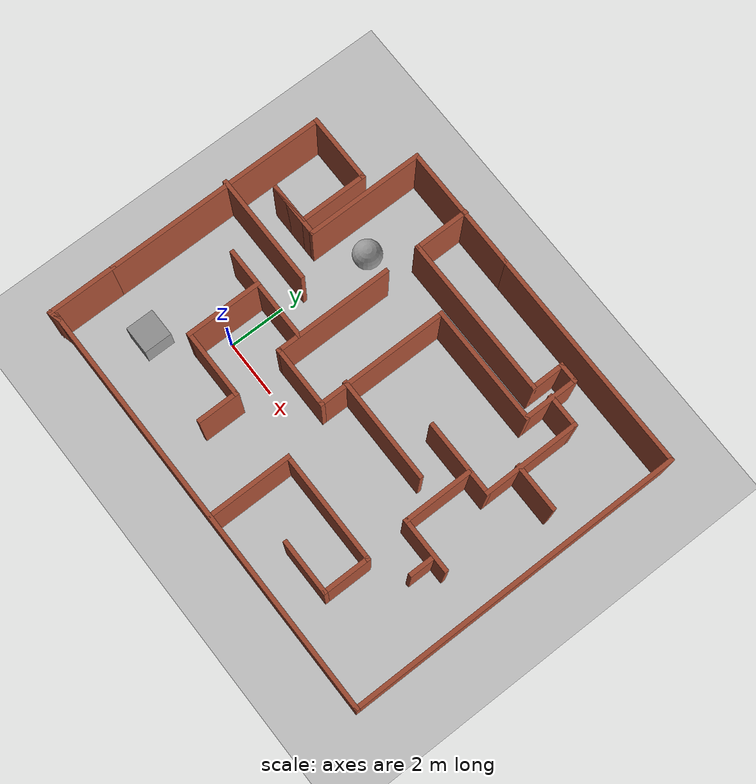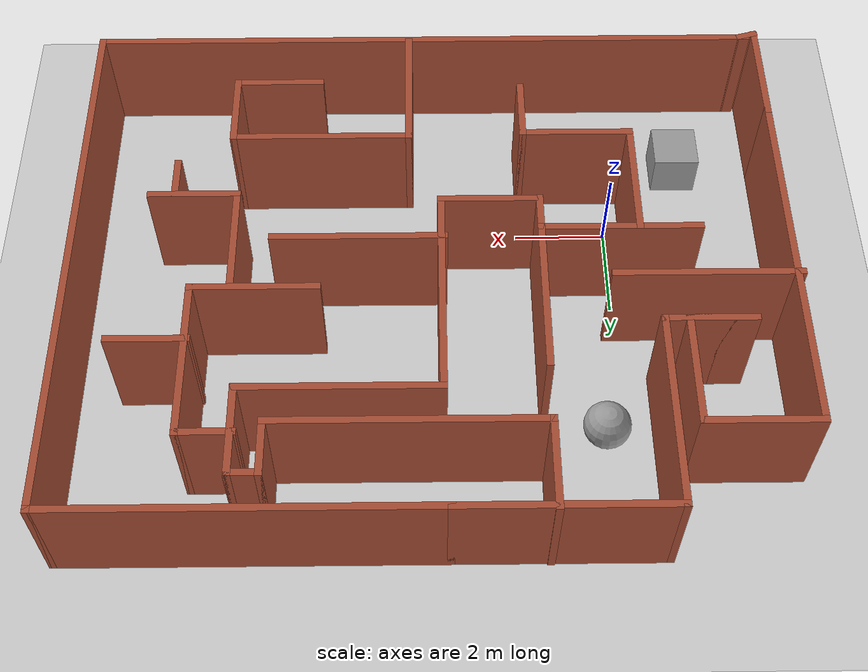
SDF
<sdf version="1.7">
 <world name="default">
  <light name="sun" type="directional">
   <pose>0 0 10 0 -0 0</pose>
   <diffuse>0.8 0.8 0.8 1</diffuse>
   <specular>0.2 0.2 0.2 1</specular>
   <attenuation>
    <range>1000</range>
    <constant>0.9</constant>
    <linear>0.01</linear>
    <quadratic>0.001</quadratic>
   </attenuation>
   <direction>-0.5 0.1 -0.9</direction>
   <spot><inner_angle>0</inner_angle><outer_angle>0</outer_angle><falloff>0</falloff></spot>
  </light>
  <model name="ground_plane">
   <static>1</static>
   <link name="link">
    <collision name="collision">
     <geometry><plane><normal>0 0 1</normal><size>100 100</size></plane></geometry>
     <surface><friction><ode><mu>100</mu><mu2>50</mu2></ode></friction></surface>
    </collision>
    <visual name="visual">
     <cast_shadows>0</cast_shadows>
     <geometry><plane><normal>0 0 1</normal><size>100 100</size></plane></geometry>
     <material>
      <script><uri>file://media/materials/scripts/gazebo.material</uri><name>Gazebo/Grey</name></script>
     </material>
    </visual>
   </link>
  </model>
  <gravity>0 0 -9.8</gravity>
  <magnetic_field>6e-06 2.3e-05 -4.2e-05</magnetic_field>
  <atmosphere type="adiabatic"/>
  <physics type="ode">
   <max_step_size>0.001</max_step_size>
   <real_time_factor>1</real_time_factor>
   <real_time_update_rate>1000</real_time_update_rate>
  </physics>
  <scene><ambient>0.4 0.4 0.4 1</ambient><background>0.7 0.7 0.7 1</background><shadows>1</shadows></scene>
  <audio><device>default</device></audio>
  <spherical_coordinates>
   <surface_model>EARTH_WGS84</surface_model>
   <latitude_deg>0</latitude_deg>
   <longitude_deg>0</longitude_deg>
   <elevation>0</elevation>
   <heading_deg>0</heading_deg>
  </spherical_coordinates>
  <model name="new_world">
   <pose>3.90558 1.97964 0 0 -0 0</pose>
   <link name="Wall_0">
    <collision name="Wall_0_Collision">
     <geometry><box><size>2.5 0.15 2.5</size></box></geometry>
     <pose>0 0 1.25 0 -0 0</pose>
    </collision>
    <visual name="Wall_0_Visual">
     <pose>0 0 1.25 0 -0 0</pose>
     <geometry><box><size>2.5 0.15 2.5</size></box></geometry>
     <material>
      <script><uri>file://media/materials/scripts/gazebo.material</uri><name>Gazebo/Bricks</name></script>
      <ambient>1 1 1 1</ambient>
     </material>
     <meta><layer>0</layer></meta>
    </visual>
    <pose>-7.47558 -4.80464 0 0 -0 -1.5708</pose>
   </link>
   <link name="Wall_10">
    <collision name="Wall_10_Collision">
     <geometry><box><size>12 0.15 2.5</size></box></geometry>
     <pose>0 0 1.25 0 -0 0</pose>
    </collision>
    <visual name="Wall_10_Visual">
     <pose>0 0 1.25 0 -0 0</pose>
     <geometry><box><size>12 0.15 2.5</size></box></geometry>
     <material>
      <script><uri>file://media/materials/scripts/gazebo.material</uri><name>Gazebo/Bricks</name></script>
      <ambient>1 1 1 1</ambient>
     </material>
     <meta><layer>0</layer></meta>
    </visual>
    <pose>7.57442 0.045359 0 0 -0 -1.5708</pose>
   </link>
   <link name="Wall_11">
    <collision name="Wall_11_Collision">
     <geometry><box><size>15 0.15 2.5</size></box></geometry>
     <pose>0 0 1.25 0 -0 0</pose>
    </collision>
    <visual name="Wall_11_Visual">
     <pose>0 0 1.25 0 -0 0</pose>
     <geometry><box><size>15 0.15 2.5</size></box></geometry>
     <material>
      <script><uri>file://media/materials/scripts/gazebo.material</uri><name>Gazebo/Bricks</name></script>
      <ambient>1 1 1 1</ambient>
     </material>
     <meta><layer>0</layer></meta>
    </visual>
    <pose>0.149421 -5.87964 0 0 -0 3.14159</pose>
   </link>
   <link name="Wall_14">
    <collision name="Wall_14_Collision">
     <geometry><box><size>0.5 0.15 2.5</size></box></geometry>
     <pose>0 0 1.25 0 -0 0</pose>
    </collision>
    <visual name="Wall_14_Visual">
     <pose>0 0 1.25 0 -0 0</pose>
     <geometry><box><size>0.5 0.15 2.5</size></box></geometry>
     <material>
      <script><uri>file://media/materials/scripts/gazebo.material</uri><name>Gazebo/Bricks</name></script>
      <ambient>1 1 1 1</ambient>
     </material>
     <meta><layer>0</layer></meta>
    </visual>
    <pose>-7.30654 -5.93435 0 0 -0 0.261799</pose>
   </link>
   <link name="Wall_16">
    <collision name="Wall_16_Collision">
     <geometry><box><size>2 0.15 2.5</size></box></geometry>
     <pose>0 0 1.25 0 -0 0</pose>
    </collision>
    <visual name="Wall_16_Visual">
     <pose>0 0 1.25 0 -0 0</pose>
     <geometry><box><size>2 0.15 2.5</size></box></geometry>
     <material>
      <script><uri>file://media/materials/scripts/gazebo.material</uri><name>Gazebo/Bricks</name></script>
      <ambient>1 1 1 1</ambient>
     </material>
     <meta><layer>0</layer></meta>
    </visual>
    <pose>-2.26243 5.0715 0 0 -0 -1.5708</pose>
   </link>
   <link name="Wall_17">
    <collision name="Wall_17_Collision">
     <geometry><box><size>5.75 0.15 2.5</size></box></geometry>
     <pose>0 0 1.25 0 -0 0</pose>
    </collision>
    <visual name="Wall_17_Visual">
     <pose>0 0 1.25 0 -0 0</pose>
     <geometry><box><size>5.75 0.15 2.5</size></box></geometry>
     <material>
      <script><uri>file://media/materials/scripts/gazebo.material</uri><name>Gazebo/Bricks</name></script>
      <ambient>1 1 1 1</ambient>
     </material>
     <meta><layer>0</layer></meta>
    </visual>
    <pose>0.537572 4.1465 0 0 -0 0</pose>
   </link>
   <link name="Wall_18">
    <collision name="Wall_18_Collision">
     <geometry><box><size>1.25 0.15 2.5</size></box></geometry>
     <pose>0 0 1.25 0 -0 0</pose>
    </collision>
    <visual name="Wall_18_Visual">
     <pose>0 0 1.25 0 -0 0</pose>
     <geometry><box><size>1.25 0.15 2.5</size></box></geometry>
     <material>
      <script><uri>file://media/materials/scripts/gazebo.material</uri><name>Gazebo/Bricks</name></script>
      <ambient>1 1 1 1</ambient>
     </material>
     <meta><layer>0</layer></meta>
    </visual>
    <pose>3.33757 4.6965 0 0 -0 1.5708</pose>
   </link>
   <link name="Wall_19">
    <collision name="Wall_19_Collision">
     <geometry><box><size>0.75 0.15 2.5</size></box></geometry>
     <pose>0 0 1.25 0 -0 0</pose>
    </collision>
    <visual name="Wall_19_Visual">
     <pose>0 0 1.25 0 -0 0</pose>
     <geometry><box><size>0.75 0.15 2.5</size></box></geometry>
     <material>
      <script><uri>file://media/materials/scripts/gazebo.material</uri><name>Gazebo/Bricks</name></script>
      <ambient>1 1 1 1</ambient>
     </material>
     <meta><layer>0</layer></meta>
    </visual>
    <pose>3.63757 5.2465 0 0 -0 0</pose>
   </link>
   <link name="Wall_2">
    <collision name="Wall_2_Collision">
     <geometry><box><size>8 0.15 2.5</size></box></geometry>
     <pose>0 0 1.25 0 -0 0</pose>
    </collision>
    <visual name="Wall_2_Visual">
     <pose>0 0 1.25 0 -0 0</pose>
     <geometry><box><size>8 0.15 2.5</size></box></geometry>
     <material>
      <script><uri>file://media/materials/scripts/gazebo.material</uri><name>Gazebo/Bricks</name></script>
      <ambient>1 1 1 1</ambient>
     </material>
     <meta><layer>0</layer></meta>
    </visual>
    <pose>-7.47558 0.295359 0 0 -0 1.5708</pose>
   </link>
   <link name="Wall_20">
    <collision name="Wall_20_Collision">
     <geometry><box><size>2 0.15 2.5</size></box></geometry>
     <pose>0 0 1.25 0 -0 0</pose>
    </collision>
    <visual name="Wall_20_Visual">
     <pose>0 0 1.25 0 -0 0</pose>
     <geometry><box><size>2 0.15 2.5</size></box></geometry>
     <material>
      <script><uri>file://media/materials/scripts/gazebo.material</uri><name>Gazebo/Bricks</name></script>
      <ambient>1 1 1 1</ambient>
     </material>
     <meta><layer>0</layer></meta>
    </visual>
    <pose>3.93757 4.3215 0 0 -0 -1.5708</pose>
   </link>
   <link name="Wall_21">
    <collision name="Wall_21_Collision">
     <geometry><box><size>4.25 0.15 2.5</size></box></geometry>
     <pose>0 0 1.25 0 -0 0</pose>
    </collision>
    <visual name="Wall_21_Visual">
     <pose>0 0 1.25 0 -0 0</pose>
     <geometry><box><size>4.25 0.15 2.5</size></box></geometry>
     <material>
      <script><uri>file://media/materials/scripts/gazebo.material</uri><name>Gazebo/Bricks</name></script>
      <ambient>1 1 1 1</ambient>
     </material>
     <meta><layer>0</layer></meta>
    </visual>
    <pose>1.88757 3.3965 0 0 -0 3.14159</pose>
   </link>
   <link name="Wall_22">
    <collision name="Wall_22_Collision">
     <geometry><box><size>4.75 0.15 2.5</size></box></geometry>
     <pose>0 0 1.25 0 -0 0</pose>
    </collision>
    <visual name="Wall_22_Visual">
     <pose>0 0 1.25 0 -0 0</pose>
     <geometry><box><size>4.75 0.15 2.5</size></box></geometry>
     <material>
      <script><uri>file://media/materials/scripts/gazebo.material</uri><name>Gazebo/Bricks</name></script>
      <ambient>1 1 1 1</ambient>
     </material>
     <meta><layer>0</layer></meta>
    </visual>
    <pose>-0.162428 1.0965 0 0 -0 -1.5708</pose>
   </link>
   <link name="Wall_23">
    <collision name="Wall_23_Collision">
     <geometry><box><size>2.25 0.15 2.5</size></box></geometry>
     <pose>0 0 1.25 0 -0 0</pose>
    </collision>
    <visual name="Wall_23_Visual">
     <pose>0 0 1.25 0 -0 0</pose>
     <geometry><box><size>2.25 0.15 2.5</size></box></geometry>
     <material>
      <script><uri>file://media/materials/scripts/gazebo.material</uri><name>Gazebo/Bricks</name></script>
      <ambient>1 1 1 1</ambient>
     </material>
     <meta><layer>0</layer></meta>
    </visual>
    <pose>-1.21243 -1.2035 0 0 -0 3.14159</pose>
   </link>
   <link name="Wall_24">
    <collision name="Wall_24_Collision">
     <geometry><box><size>4.25 0.15 2.5</size></box></geometry>
     <pose>0 0 1.25 0 -0 0</pose>
    </collision>
    <visual name="Wall_24_Visual">
     <pose>0 0 1.25 0 -0 0</pose>
     <geometry><box><size>4.25 0.15 2.5</size></box></geometry>
     <material>
      <script><uri>file://media/materials/scripts/gazebo.material</uri><name>Gazebo/Bricks</name></script>
      <ambient>1 1 1 1</ambient>
     </material>
     <meta><layer>0</layer></meta>
    </visual>
    <pose>-2.26243 0.846497 0 0 -0 1.5708</pose>
   </link>
   <link name="Wall_26">
    <collision name="Wall_26_Collision">
     <geometry><box><size>4 0.15 2.5</size></box></geometry>
     <pose>0 0 1.25 0 -0 0</pose>
    </collision>
    <visual name="Wall_26_Visual">
     <pose>0 0 1.25 0 -0 0</pose>
     <geometry><box><size>4 0.15 2.5</size></box></geometry>
     <material>
      <script><uri>file://media/materials/scripts/gazebo.material</uri><name>Gazebo/Bricks</name></script>
      <ambient>1 1 1 1</ambient>
     </material>
     <meta><layer>0</layer></meta>
    </visual>
    <pose>-5.64942 0.754861 0 0 -0 0</pose>
   </link>
   <link name="Wall_28">
    <collision name="Wall_28_Collision">
     <geometry><box><size>3.5 0.15 2.5</size></box></geometry>
     <pose>0 0 1.25 0 -0 0</pose>
    </collision>
    <visual name="Wall_28_Visual">
     <pose>0 0 1.25 0 -0 0</pose>
     <geometry><box><size>3.5 0.15 2.5</size></box></geometry>
     <material>
      <script><uri>file://media/materials/scripts/gazebo.material</uri><name>Gazebo/Bricks</name></script>
      <ambient>1 1 1 1</ambient>
     </material>
     <meta><layer>0</layer></meta>
    </visual>
    <pose>-3.93743 -0.441217 0 0 -0 3.14159</pose>
   </link>
   <link name="Wall_3">
    <collision name="Wall_3_Collision">
     <geometry><box><size>2.5 0.15 2.5</size></box></geometry>
     <pose>0 0 1.25 0 -0 0</pose>
    </collision>
    <visual name="Wall_3_Visual">
     <pose>0 0 1.25 0 -0 0</pose>
     <geometry><box><size>2.5 0.15 2.5</size></box></geometry>
     <material>
      <script><uri>file://media/materials/scripts/gazebo.material</uri><name>Gazebo/Bricks</name></script>
      <ambient>1 1 1 1</ambient>
     </material>
     <meta><layer>0</layer></meta>
    </visual>
    <pose>-6.30058 4.22036 0 0 -0 0</pose>
   </link>
   <link name="Wall_30">
    <collision name="Wall_30_Collision">
     <geometry><box><size>2.75 0.15 2.5</size></box></geometry>
     <pose>0 0 1.25 0 -0 0</pose>
    </collision>
    <visual name="Wall_30_Visual">
     <pose>0 0 1.25 0 -0 0</pose>
     <geometry><box><size>2.75 0.15 2.5</size></box></geometry>
     <material>
      <script><uri>file://media/materials/scripts/gazebo.material</uri><name>Gazebo/Bricks</name></script>
      <ambient>1 1 1 1</ambient>
     </material>
     <meta><layer>0</layer></meta>
    </visual>
    <pose>-4.33798 -1.74122 0 0 -0 -1.5708</pose>
   </link>
   <link name="Wall_31">
    <collision name="Wall_31_Collision">
     <geometry><box><size>2.5 0.15 2.5</size></box></geometry>
     <pose>0 0 1.25 0 -0 0</pose>
    </collision>
    <visual name="Wall_31_Visual">
     <pose>0 0 1.25 0 -0 0</pose>
     <geometry><box><size>2.5 0.15 2.5</size></box></geometry>
     <material>
      <script><uri>file://media/materials/scripts/gazebo.material</uri><name>Gazebo/Bricks</name></script>
      <ambient>1 1 1 1</ambient>
     </material>
     <meta><layer>0</layer></meta>
    </visual>
    <pose>-3.16298 -3.04122 0 0 -0 0</pose>
   </link>
   <link name="Wall_32">
    <collision name="Wall_32_Collision">
     <geometry><box><size>1.5 0.15 2.5</size></box></geometry>
     <pose>0 0 1.25 0 -0 0</pose>
    </collision>
    <visual name="Wall_32_Visual">
     <pose>0 0 1.25 0 -0 0</pose>
     <geometry><box><size>1.5 0.15 2.5</size></box></geometry>
     <material>
      <script><uri>file://media/materials/scripts/gazebo.material</uri><name>Gazebo/Bricks</name></script>
      <ambient>1 1 1 1</ambient>
     </material>
     <meta><layer>0</layer></meta>
    </visual>
    <pose>-1.98798 -3.71622 0 0 -0 -1.5708</pose>
   </link>
   <link name="Wall_34">
    <collision name="Wall_34_Collision">
     <geometry><box><size>1.25 0.15 2.5</size></box></geometry>
     <pose>0 0 1.25 0 -0 0</pose>
    </collision>
    <visual name="Wall_34_Visual">
     <pose>0 0 1.25 0 -0 0</pose>
     <geometry><box><size>1.25 0.15 2.5</size></box></geometry>
     <material>
      <script><uri>file://media/materials/scripts/gazebo.material</uri><name>Gazebo/Bricks</name></script>
      <ambient>1 1 1 1</ambient>
     </material>
     <meta><layer>0</layer></meta>
    </visual>
    <pose>4.44386 4.37827 0 0 -0 0</pose>
   </link>
   <link name="Wall_35">
    <collision name="Wall_35_Collision">
     <geometry><box><size>3.5 0.15 2.5</size></box></geometry>
     <pose>0 0 1.25 0 -0 0</pose>
    </collision>
    <visual name="Wall_35_Visual">
     <pose>0 0 1.25 0 -0 0</pose>
     <geometry><box><size>3.5 0.15 2.5</size></box></geometry>
     <material>
      <script><uri>file://media/materials/scripts/gazebo.material</uri><name>Gazebo/Bricks</name></script>
      <ambient>1 1 1 1</ambient>
     </material>
     <meta><layer>0</layer></meta>
    </visual>
    <pose>4.99385 2.70327 0 0 -0 -1.5708</pose>
   </link>
   <link name="Wall_36">
    <collision name="Wall_36_Collision">
     <geometry><box><size>2.75 0.15 2.5</size></box></geometry>
     <pose>0 0 1.25 0 -0 0</pose>
    </collision>
    <visual name="Wall_36_Visual">
     <pose>0 0 1.25 0 -0 0</pose>
     <geometry><box><size>2.75 0.15 2.5</size></box></geometry>
     <material>
      <script><uri>file://media/materials/scripts/gazebo.material</uri><name>Gazebo/Bricks</name></script>
      <ambient>1 1 1 1</ambient>
     </material>
     <meta><layer>0</layer></meta>
    </visual>
    <pose>3.69386 1.02827 0 0 -0 3.14159</pose>
   </link>
   <link name="Wall_38">
    <collision name="Wall_38_Collision">
     <geometry><box><size>3.75 0.15 2.5</size></box></geometry>
     <pose>0 0 1.25 0 -0 0</pose>
    </collision>
    <visual name="Wall_38_Visual">
     <pose>0 0 1.25 0 -0 0</pose>
     <geometry><box><size>3.75 0.15 2.5</size></box></geometry>
     <material>
      <script><uri>file://media/materials/scripts/gazebo.material</uri><name>Gazebo/Bricks</name></script>
      <ambient>1 1 1 1</ambient>
     </material>
     <meta><layer>0</layer></meta>
    </visual>
    <pose>1.57794 -0.230144 0 0 -0 0</pose>
   </link>
   <link name="Wall_4">
    <collision name="Wall_4_Collision">
     <geometry><box><size>2.5 0.15 2.5</size></box></geometry>
     <pose>0 0 1.25 0 -0 0</pose>
    </collision>
    <visual name="Wall_4_Visual">
     <pose>0 0 1.25 0 -0 0</pose>
     <geometry><box><size>2.5 0.15 2.5</size></box></geometry>
     <material>
      <script><uri>file://media/materials/scripts/gazebo.material</uri><name>Gazebo/Bricks</name></script>
      <ambient>1 1 1 1</ambient>
     </material>
     <meta><layer>0</layer></meta>
    </visual>
    <pose>-5.12558 3.04536 0 0 -0 -1.5708</pose>
   </link>
   <link name="Wall_40">
    <collision name="Wall_40_Collision">
     <geometry><box><size>2.5 0.15 2.5</size></box></geometry>
     <pose>0 0 1.25 0 -0 0</pose>
    </collision>
    <visual name="Wall_40_Visual">
     <pose>0 0 1.25 0 -0 0</pose>
     <geometry><box><size>2.5 0.15 2.5</size></box></geometry>
     <material>
      <script><uri>file://media/materials/scripts/gazebo.material</uri><name>Gazebo/Bricks</name></script>
      <ambient>1 1 1 1</ambient>
     </material>
     <meta><layer>0</layer></meta>
    </visual>
    <pose>4.17528 -0.209066 0 0 -0 -1.5708</pose>
   </link>
   <link name="Wall_41">
    <collision name="Wall_41_Collision">
     <geometry><box><size>2 0.15 2.5</size></box></geometry>
     <pose>0 0 1.25 0 -0 0</pose>
    </collision>
    <visual name="Wall_41_Visual">
     <pose>0 0 1.25 0 -0 0</pose>
     <geometry><box><size>2 0.15 2.5</size></box></geometry>
     <material>
      <script><uri>file://media/materials/scripts/gazebo.material</uri><name>Gazebo/Bricks</name></script>
      <ambient>1 1 1 1</ambient>
     </material>
     <meta><layer>0</layer></meta>
    </visual>
    <pose>5.10029 -1.38407 0 0 -0 0</pose>
   </link>
   <link name="Wall_43">
    <collision name="Wall_43_Collision">
     <geometry><box><size>1.75 0.15 2.5</size></box></geometry>
     <pose>0 0 1.25 0 -0 0</pose>
    </collision>
    <visual name="Wall_43_Visual">
     <pose>0 0 1.25 0 -0 0</pose>
     <geometry><box><size>1.75 0.15 2.5</size></box></geometry>
     <material>
      <script><uri>file://media/materials/scripts/gazebo.material</uri><name>Gazebo/Bricks</name></script>
      <ambient>1 1 1 1</ambient>
     </material>
     <meta><layer>0</layer></meta>
    </visual>
    <pose>5.74922 2.26755 0 0 -0 0</pose>
   </link>
   <link name="Wall_45">
    <collision name="Wall_45_Collision">
     <geometry><box><size>3 0.15 2.5</size></box></geometry>
     <pose>0 0 1.25 0 -0 0</pose>
    </collision>
    <visual name="Wall_45_Visual">
     <pose>0 0 1.25 0 -0 0</pose>
     <geometry><box><size>3 0.15 2.5</size></box></geometry>
     <material>
      <script><uri>file://media/materials/scripts/gazebo.material</uri><name>Gazebo/Bricks</name></script>
      <ambient>1 1 1 1</ambient>
     </material>
     <meta><layer>0</layer></meta>
    </visual>
    <pose>0.516694 -4.39857 0 0 -0 1.5708</pose>
   </link>
   <link name="Wall_46">
    <collision name="Wall_46_Collision">
     <geometry><box><size>4 0.15 2.5</size></box></geometry>
     <pose>0 0 1.25 0 -0 0</pose>
    </collision>
    <visual name="Wall_46_Visual">
     <pose>0 0 1.25 0 -0 0</pose>
     <geometry><box><size>4 0.15 2.5</size></box></geometry>
     <material>
      <script><uri>file://media/materials/scripts/gazebo.material</uri><name>Gazebo/Bricks</name></script>
      <ambient>1 1 1 1</ambient>
     </material>
     <meta><layer>0</layer></meta>
    </visual>
    <pose>2.44169 -2.97357 0 0 -0 0</pose>
   </link>
   <link name="Wall_47">
    <collision name="Wall_47_Collision">
     <geometry><box><size>1.75 0.15 2.5</size></box></geometry>
     <pose>0 0 1.25 0 -0 0</pose>
    </collision>
    <visual name="Wall_47_Visual">
     <pose>0 0 1.25 0 -0 0</pose>
     <geometry><box><size>1.75 0.15 2.5</size></box></geometry>
     <material>
      <script><uri>file://media/materials/scripts/gazebo.material</uri><name>Gazebo/Bricks</name></script>
      <ambient>1 1 1 1</ambient>
     </material>
     <meta><layer>0</layer></meta>
    </visual>
    <pose>4.36669 -3.77357 0 0 -0 -1.5708</pose>
   </link>
   <link name="Wall_48">
    <collision name="Wall_48_Collision">
     <geometry><box><size>2 0.15 2.5</size></box></geometry>
     <pose>0 0 1.25 0 -0 0</pose>
    </collision>
    <visual name="Wall_48_Visual">
     <pose>0 0 1.25 0 -0 0</pose>
     <geometry><box><size>2 0.15 2.5</size></box></geometry>
     <material>
      <script><uri>file://media/materials/scripts/gazebo.material</uri><name>Gazebo/Bricks</name></script>
      <ambient>1 1 1 1</ambient>
     </material>
     <meta><layer>0</layer></meta>
    </visual>
    <pose>3.44169 -4.57357 0 0 -0 3.14159</pose>
   </link>
   <link name="Wall_5">
    <collision name="Wall_5_Collision">
     <geometry><box><size>1.5 0.15 2.5</size></box></geometry>
     <pose>0 0 1.25 0 -0 0</pose>
    </collision>
    <visual name="Wall_5_Visual">
     <pose>0 0 1.25 0 -0 0</pose>
     <geometry><box><size>1.5 0.15 2.5</size></box></geometry>
     <material>
      <script><uri>file://media/materials/scripts/gazebo.material</uri><name>Gazebo/Bricks</name></script>
      <ambient>1 1 1 1</ambient>
     </material>
     <meta><layer>0</layer></meta>
    </visual>
    <pose>-5.80058 1.87036 0 0 -0 3.14159</pose>
   </link>
   <link name="Wall_50">
    <collision name="Wall_50_Collision">
     <geometry><box><size>1 0.15 2.5</size></box></geometry>
     <pose>0 0 1.25 0 -0 0</pose>
    </collision>
    <visual name="Wall_50_Visual">
     <pose>0 0 1.25 0 -0 0</pose>
     <geometry><box><size>1 0.15 2.5</size></box></geometry>
     <material>
      <script><uri>file://media/materials/scripts/gazebo.material</uri><name>Gazebo/Bricks</name></script>
      <ambient>1 1 1 1</ambient>
     </material>
     <meta><layer>0</layer></meta>
    </visual>
    <pose>5.51208 -1.81604 0 0 -0 -1.5708</pose>
   </link>
   <link name="Wall_6">
    <collision name="Wall_6_Collision">
     <geometry><box><size>2 0.15 2.5</size></box></geometry>
     <pose>0 0 1.25 0 -0 0</pose>
    </collision>
    <visual name="Wall_6_Visual">
     <pose>0 0 1.25 0 -0 0</pose>
     <geometry><box><size>2 0.15 2.5</size></box></geometry>
     <material>
      <script><uri>file://media/materials/scripts/gazebo.material</uri><name>Gazebo/Bricks</name></script>
      <ambient>1 1 1 1</ambient>
     </material>
     <meta><layer>0</layer></meta>
    </visual>
    <pose>-5.55058 1.87036 0 0 -0 0</pose>
   </link>
   <link name="Wall_7">
    <collision name="Wall_7_Collision">
     <geometry><box><size>4.25 0.15 2.5</size></box></geometry>
     <pose>0 0 1.25 0 -0 0</pose>
    </collision>
    <visual name="Wall_7_Visual">
     <pose>0 0 1.25 0 -0 0</pose>
     <geometry><box><size>4.25 0.15 2.5</size></box></geometry>
     <material>
      <script><uri>file://media/materials/scripts/gazebo.material</uri><name>Gazebo/Bricks</name></script>
      <ambient>1 1 1 1</ambient>
     </material>
     <meta><layer>0</layer></meta>
    </visual>
    <pose>-4.62558 3.92036 0 0 -0 1.5708</pose>
   </link>
   <link name="Wall_8">
    <collision name="Wall_8_Collision">
     <geometry><box><size>4.5 0.15 2.5</size></box></geometry>
     <pose>0 0 1.25 0 -0 0</pose>
    </collision>
    <visual name="Wall_8_Visual">
     <pose>0 0 1.25 0 -0 0</pose>
     <geometry><box><size>4.5 0.15 2.5</size></box></geometry>
     <material>
      <script><uri>file://media/materials/scripts/gazebo.material</uri><name>Gazebo/Bricks</name></script>
      <ambient>1 1 1 1</ambient>
     </material>
     <meta><layer>0</layer></meta>
    </visual>
    <pose>-2.45058 5.97036 0 0 -0 0</pose>
   </link>
   <link name="Wall_9">
    <collision name="Wall_9_Collision">
     <geometry><box><size>8 0.15 2.5</size></box></geometry>
     <pose>0 0 1.25 0 -0 0</pose>
    </collision>
    <visual name="Wall_9_Visual">
     <pose>0 0 1.25 0 -0 0</pose>
     <geometry><box><size>8 0.15 2.5</size></box></geometry>
     <material>
      <script><uri>file://media/materials/scripts/gazebo.material</uri><name>Gazebo/Bricks</name></script>
      <ambient>1 1 1 1</ambient>
     </material>
     <meta><layer>0</layer></meta>
    </visual>
    <pose>3.64942 5.97036 0 0 -0 0</pose>
   </link>
   <static>1</static>
  </model>
  <model name="unit_box">
   <pose>-1.7202 -1.88844 0.499995 -1e-05 -0 0</pose>
   <link name="link">
    <inertial>
     <mass>1</mass>
     <inertia>
      <ixx>0.166667</ixx>
      <ixy>0</ixy>
      <ixz>0</ixz>
      <iyy>0.166667</iyy>
      <iyz>0</iyz>
      <izz>0.166667</izz>
     </inertia>
    </inertial>
    <collision name="collision"><geometry><box><size>1 1 1</size></box></geometry></collision>
    <visual name="visual">
     <geometry><box><size>1 1 1</size></box></geometry>
     <material>
      <script><name>Gazebo/Grey</name><uri>file://media/materials/scripts/gazebo.material</uri></script>
     </material>
    </visual>
   </link>
  </model>
  <model name="unit_sphere">
   <pose>0.349979 5.18141 0.5 0 -0 0</pose>
   <link name="link">
    <inertial>
     <mass>1</mass>
     <inertia><ixx>0.1</ixx><ixy>0</ixy><ixz>0</ixz><iyy>0.1</iyy><iyz>0</iyz><izz>0.1</izz></inertia>
    </inertial>
    <collision name="collision"><geometry><sphere><radius>0.5</radius></sphere></geometry></collision>
    <visual name="visual">
     <geometry><sphere><radius>0.5</radius></sphere></geometry>
     <material>
      <script><name>Gazebo/Grey</name><uri>file://media/materials/scripts/gazebo.material</uri></script>
     </material>
    </visual>
   </link>
  </model>
 </world>
</sdf>
